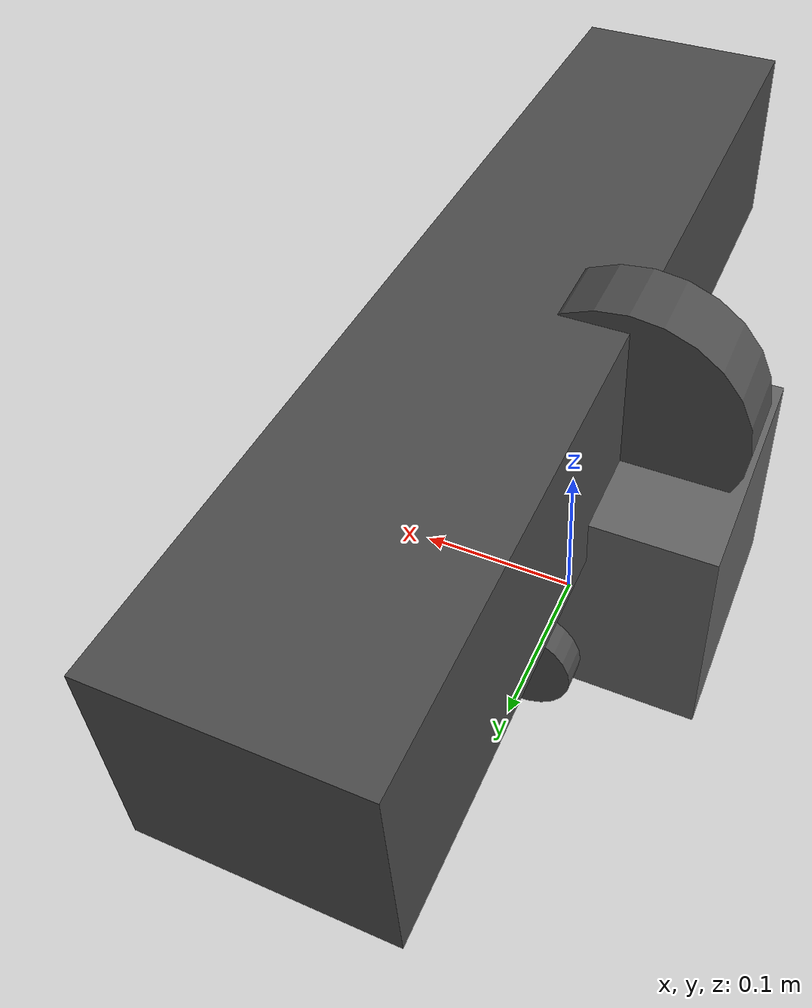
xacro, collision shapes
<?xml version="1.0" ?>
<robot name="turtlebot3_burger" xmlns:xacro="http://ros.org/wiki/xacro">
  <xacro:include filename="$(find turtlebot3_description)/urdf/common_properties.xacro"/>
  <xacro:include filename="$(find turtlebot3_description)/urdf/turtlebot3_burger.gazebo.xacro"/>

    <!-- Mount and camera parameters -->
  <xacro:property name="r200_cam_offset_px" value="0.032" />
  <xacro:property name="r200_cam_offset_py" value="0.000" />
  <xacro:property name="r200_cam_offset_pz" value="0.171" />

  <link name="base_footprint"/>

  <joint name="base_joint" type="fixed">
    <parent link="base_footprint"/>
    <child link="base_link"/>
    <origin xyz="0.0 0.0 0.010" rpy="0 0 0"/>
  </joint>

  <link name="base_link">
    <visual>
      <origin xyz="-0.032 0 0.0" rpy="0 0 0"/>
      <geometry>
        <mesh filename="package://turtlebot3_description/meshes/bases/burger_base.stl" scale="0.001 0.001 0.001"/>
      </geometry>
      <material name="light_black"/>
    </visual>

    <collision>
      <origin xyz="-0.032 0 0.070" rpy="0 0 0"/>
      <geometry>
        <box size="0.140 0.140 0.140"/>
      </geometry>
    </collision>

    <inertial>
      <origin xyz="-0.032 0 0" rpy="0 0 0"/>
      <mass value="1"/>
      <inertia ixx="0.01" ixy="0.0" ixz="0.0"
               iyy="0.01" iyz="0.0"
               izz="0.01" />
    </inertial>
  </link>

  <joint name="wheel_left_joint" type="continuous">
    <parent link="base_link"/>
    <child link="wheel_left_link"/>
    <origin xyz="0.0 0.08 0.023" rpy="${-M_PI*0.5} 0 0"/>
    <axis xyz="0 0 1"/>
  </joint>

  <link name="wheel_left_link">
    <visual>
      <origin xyz="0 0 0" rpy="${M_PI*0.5} 0 0"/>
      <geometry>
        <mesh filename="package://turtlebot3_description/meshes/wheels/left_tire.stl" scale="0.001 0.001 0.001"/>
      </geometry>
      <material name="dark"/>
    </visual>

    <collision>
      <origin xyz="0 0 0" rpy="0 0 0"/>
      <geometry>
        <cylinder length="0.018" radius="0.033"/>
      </geometry>
    </collision>

    <inertial>
      <origin xyz="0 0 0" />
      <mass value="0.01" />
      <inertia ixx="0.001" ixy="0.0" ixz="0.0"
               iyy="0.001" iyz="0.0"
               izz="0.001" />
    </inertial>
  </link>

  <joint name="wheel_right_joint" type="continuous">
    <parent link="base_link"/>
    <child link="wheel_right_link"/>
    <origin xyz="0.0 -0.08 0.023" rpy="${-M_PI*0.5} 0 0"/>
    <axis xyz="0 0 1"/>
  </joint>

  <link name="wheel_right_link">
    <visual>
      <origin xyz="0 0 0" rpy="${M_PI*0.5} 0 0"/>
      <geometry>
        <mesh filename="package://turtlebot3_description/meshes/wheels/right_tire.stl" scale="0.001 0.001 0.001"/>
      </geometry>
      <material name="dark"/>
    </visual>

    <collision>
      <origin xyz="0 0 0" rpy="0 0 0"/>
      <geometry>
        <cylinder length="0.018" radius="0.033"/>
      </geometry>
    </collision>

    <inertial>
      <origin xyz="0 0 0" />
      <mass value="0.01" />
      <inertia ixx="0.001" ixy="0.0" ixz="0.0"
               iyy="0.001" iyz="0.0"
               izz="0.001" />
    </inertial>
  </link>

  <joint name="caster_back_joint" type="fixed">
    <parent link="base_link"/>
    <child link="caster_back_link"/>
    <origin xyz="-0.081 0 -0.004" rpy="${-M_PI*0.5} 0 0"/>
  </joint>

  <link name="caster_back_link">
    <collision>
      <origin xyz="0 0 0" rpy="0 0 0"/>
      <geometry>
        <box size="0.030 0.010 0.020"/>
      </geometry>
    </collision>

    <inertial>
      <origin xyz="0 0 0" />
      <mass value="0.01" />
      <inertia ixx="0.001" ixy="0.0" ixz="0.0"
               iyy="0.001" iyz="0.0"
               izz="0.001" />
    </inertial>
  </link>

  <joint name="imu_joint" type="fixed">
    <parent link="base_link"/>
    <child link="imu_link"/>
    <origin xyz="-0.032 0 0.068" rpy="0 0 0"/>
  </joint>

  <link name="imu_link"/>

  <joint name="scan_joint" type="fixed">
    <parent link="base_link"/>
    <child link="base_scan"/>
    <origin xyz="-0.032 0 0.171" rpy="${-M_PI*0.5} 0 0"/>
  </joint>

  <link name="base_scan">
    <visual>
      <origin xyz="0 0 0.0" rpy="0 0 0"/>
      <geometry>
        <mesh filename="package://turtlebot3_description/meshes/sensors/lds.stl" scale="0.001 0.001 0.001"/>
      </geometry>
      <material name="dark"/>
    </visual>

    <collision>
      <origin xyz="0 0 0" rpy="0 0 0"/>
      <geometry>
        <cylinder length="0.0408" radius="0.070"/>
      </geometry>
    </collision>

    <inertial>
      <mass value="0.01" />
      <origin xyz="0 0 0" />
      <inertia ixx="0.001" ixy="0.0" ixz="0.0"
               iyy="0.001" iyz="0.0"
               izz="0.001" />
    </inertial>
  </link>

  <joint name="camera_joint" type="fixed">
    <axis xyz="0 1 0" />
    <origin xyz="${r200_cam_offset_px} ${r200_cam_offset_py} ${r200_cam_offset_pz}" rpy="0 0 0"/>
    <parent link="base_link"/>
    <child link="camera_link"/>
  </joint>

  <!-- Camera -->
  <link name="camera_link">
    <collision>
      <origin xyz="0.0 0.0 0.0" rpy="0 0 0"/>
        <geometry>
          <box size="0.130 0.567 0.118"/>
        </geometry>
    </collision>

    <visual>
      <origin xyz="0 0 0" rpy="${M_PI/2} 0 ${M_PI/2}"/>
        <geometry>
         <mesh filename="package://turtlebot3_description/meshes/sensors/astra.dae" scale="0.001 0.001 0.001"/>
        </geometry>
        <material name="dark"/>
    </visual>

    <inertial>
      <mass value="0.01" />
        <origin xyz="0 0 0" />
        <inertia ixx="0.003881243" ixy="0.0" ixz="0.0"
                 iyy="0.000498940" iyz="0.0"
                 izz="0.003879257" />
    </inertial>
  </link>
</robot>

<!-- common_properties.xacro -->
<robot name="xacro_properties" xmlns:xacro="http://ros.org/wiki/xacro">
  <xacro:property name="M_PI" value="3.1415926535897931" />
  <xacro:property name="camera_link" value="0.05" /> <!-- Size of square 'camera' box -->

  <!-- Init colour -->
  <material name="black">
      <color rgba="0.0 0.0 0.0 1.0"/>
  </material>

  <material name="dark">
    <color rgba="0.3 0.3 0.3 1.0"/>
  </material>
  <material name="light_black">
    <color rgba="0.4 0.4 0.4 1.0"/>
  </material>

  <material name="blue">
    <color rgba="0.0 0.0 0.8 1.0"/>
  </material>

  <material name="green">
    <color rgba="0.0 0.8 0.0 1.0"/>
  </material>

  <material name="grey">
    <color rgba="0.5 0.5 0.5 1.0"/>
  </material>

  <material name="orange">
    <color rgba="${255/255} ${108/255} ${10/255} 1.0"/>
  </material>

  <material name="brown">
    <color rgba="${222/255} ${207/255} ${195/255} 1.0"/>
  </material>

  <material name="red">
    <color rgba="0.8 0.0 0.0 1.0"/>
  </material>

  <material name="white">
    <color rgba="1.0 1.0 1.0 1.0"/>
  </material>
</robot>
